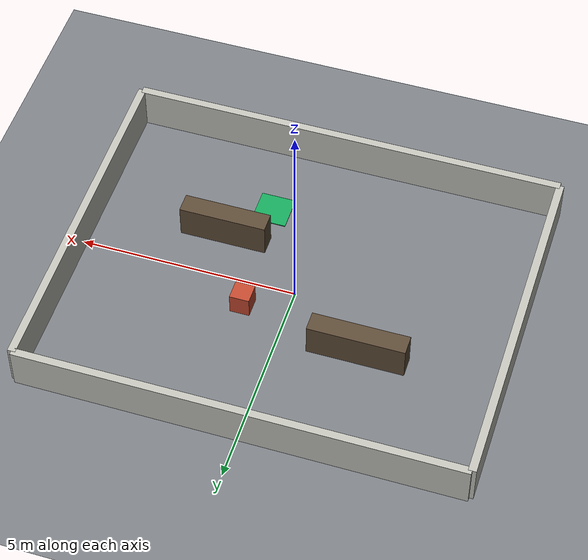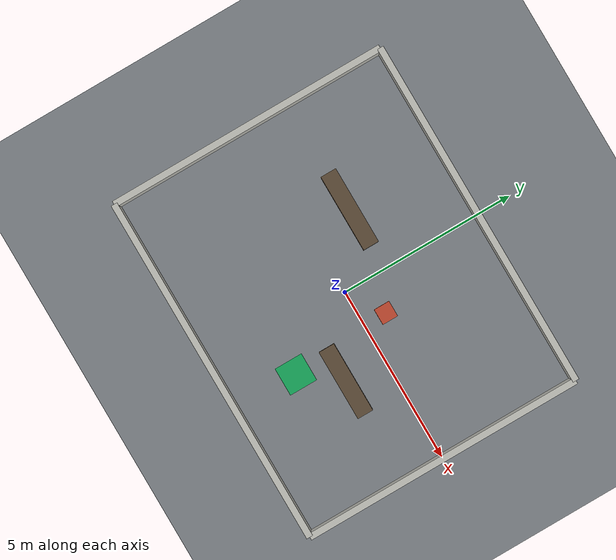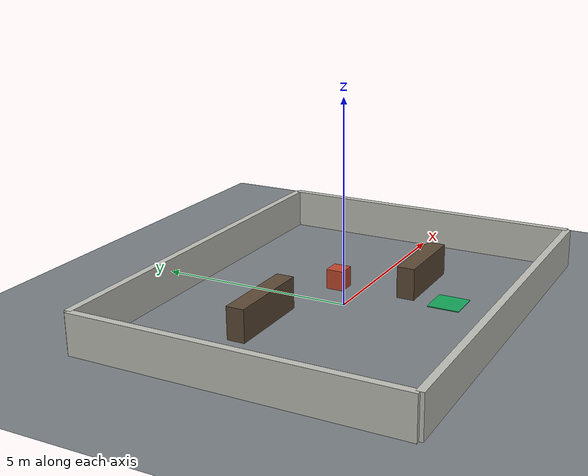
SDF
<?xml version="1.0"?>
<sdf version="1.10">
  <world name="warehouse_world">
    <physics name="default_physics" type="ode">
      <max_step_size>0.004</max_step_size>
      <real_time_factor>1.0</real_time_factor>
      <real_time_update_rate>250</real_time_update_rate>
    </physics>

    <plugin filename="gz-sim-physics-system" name="gz::sim::systems::Physics"/>
    <plugin filename="gz-sim-user-commands-system" name="gz::sim::systems::UserCommands"/>
    <plugin filename="gz-sim-scene-broadcaster-system" name="gz::sim::systems::SceneBroadcaster"/>
    <plugin filename="gz-sim-sensors-system" name="gz::sim::systems::Sensors">
      <render_engine>ogre2</render_engine>
    </plugin>

    <light name="warehouse_sun" type="directional">
      <cast_shadows>true</cast_shadows>
      <pose>0 0 5 0 0 0</pose>
      <diffuse>0.85 0.85 0.80 1</diffuse>
      <specular>0.2 0.2 0.2 1</specular>
      <direction>-0.4 0.2 -0.9</direction>
    </light>

    <model name="ground_plane">
      <static>true</static>
      <link name="link">
        <collision name="collision">
          <geometry>
            <plane>
              <normal>0 0 1</normal>
              <size>12 10</size>
            </plane>
          </geometry>
        </collision>
        <visual name="visual">
          <geometry>
            <plane>
              <normal>0 0 1</normal>
              <size>12 10</size>
            </plane>
          </geometry>
          <material>
            <ambient>0.48 0.50 0.52 1</ambient>
            <diffuse>0.48 0.50 0.52 1</diffuse>
          </material>
        </visual>
      </link>
    </model>

    <model name="north_wall">
      <static>true</static>
      <pose>0 4.0 0.5 0 0 0</pose>
      <link name="link">
        <collision name="collision">
          <geometry><box><size>10.0 0.18 1.0</size></box></geometry>
        </collision>
        <visual name="visual">
          <geometry><box><size>10.0 0.18 1.0</size></box></geometry>
          <material><ambient>0.75 0.75 0.72 1</ambient><diffuse>0.75 0.75 0.72 1</diffuse></material>
        </visual>
      </link>
    </model>

    <model name="south_wall">
      <static>true</static>
      <pose>0 -4.0 0.5 0 0 0</pose>
      <link name="link">
        <collision name="collision">
          <geometry><box><size>10.0 0.18 1.0</size></box></geometry>
        </collision>
        <visual name="visual">
          <geometry><box><size>10.0 0.18 1.0</size></box></geometry>
          <material><ambient>0.75 0.75 0.72 1</ambient><diffuse>0.75 0.75 0.72 1</diffuse></material>
        </visual>
      </link>
    </model>

    <model name="west_wall">
      <static>true</static>
      <pose>-5.0 0 0.5 0 0 0</pose>
      <link name="link">
        <collision name="collision">
          <geometry><box><size>0.18 8.0 1.0</size></box></geometry>
        </collision>
        <visual name="visual">
          <geometry><box><size>0.18 8.0 1.0</size></box></geometry>
          <material><ambient>0.75 0.75 0.72 1</ambient><diffuse>0.75 0.75 0.72 1</diffuse></material>
        </visual>
      </link>
    </model>

    <model name="east_wall">
      <static>true</static>
      <pose>5.0 0 0.5 0 0 0</pose>
      <link name="link">
        <collision name="collision">
          <geometry><box><size>0.18 8.0 1.0</size></box></geometry>
        </collision>
        <visual name="visual">
          <geometry><box><size>0.18 8.0 1.0</size></box></geometry>
          <material><ambient>0.75 0.75 0.72 1</ambient><diffuse>0.75 0.75 0.72 1</diffuse></material>
        </visual>
      </link>
    </model>

    <model name="shelf_row_left">
      <static>true</static>
      <pose>-1.8 1.2 0.4 0 0 0</pose>
      <link name="link">
        <collision name="collision">
          <geometry><box><size>2.2 0.45 0.8</size></box></geometry>
        </collision>
        <visual name="visual">
          <geometry><box><size>2.2 0.45 0.8</size></box></geometry>
          <material><ambient>0.36 0.29 0.21 1</ambient><diffuse>0.36 0.29 0.21 1</diffuse></material>
        </visual>
      </link>
    </model>

    <model name="shelf_row_right">
      <static>true</static>
      <pose>2.0 -1.15 0.4 0 0 0</pose>
      <link name="link">
        <collision name="collision">
          <geometry><box><size>2.0 0.45 0.8</size></box></geometry>
        </collision>
        <visual name="visual">
          <geometry><box><size>2.0 0.45 0.8</size></box></geometry>
          <material><ambient>0.36 0.29 0.21 1</ambient><diffuse>0.36 0.29 0.21 1</diffuse></material>
        </visual>
      </link>
    </model>

    <model name="center_obstacle">
      <static>true</static>
      <pose>1.0 0.65 0.25 0 0 0</pose>
      <link name="link">
        <collision name="collision">
          <geometry><box><size>0.45 0.45 0.5</size></box></geometry>
        </collision>
        <visual name="visual">
          <geometry><box><size>0.45 0.45 0.5</size></box></geometry>
          <material><ambient>0.75 0.28 0.18 1</ambient><diffuse>0.75 0.28 0.18 1</diffuse></material>
        </visual>
      </link>
    </model>

    <model name="delivery_target_a">
      <static>true</static>
      <pose>1.2 -2.2 0.01 0 0 0</pose>
      <link name="link">
        <visual name="visual">
          <geometry><box><size>0.8 0.8 0.02</size></box></geometry>
          <material><ambient>0.08 0.65 0.35 1</ambient><diffuse>0.08 0.65 0.35 1</diffuse></material>
        </visual>
      </link>
    </model>
  </world>
</sdf>
